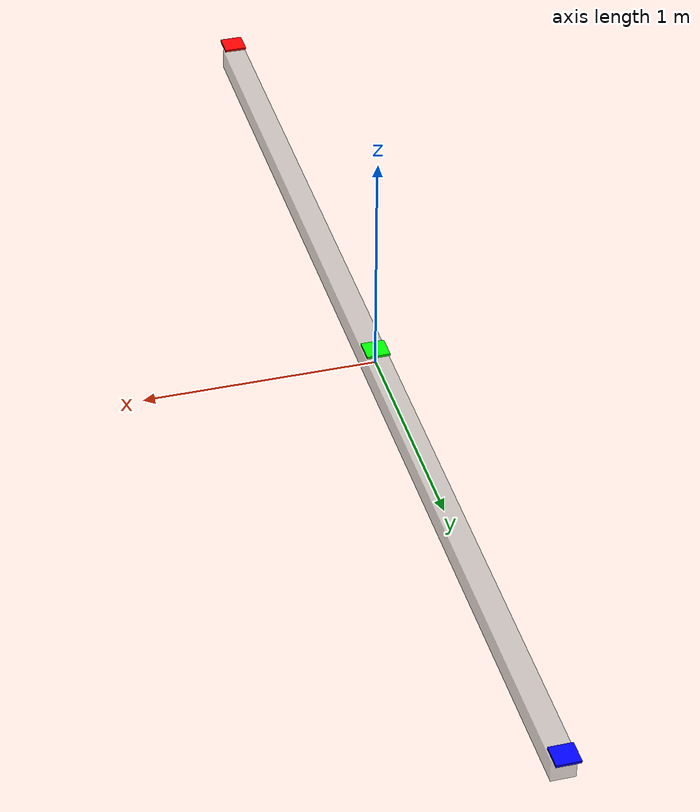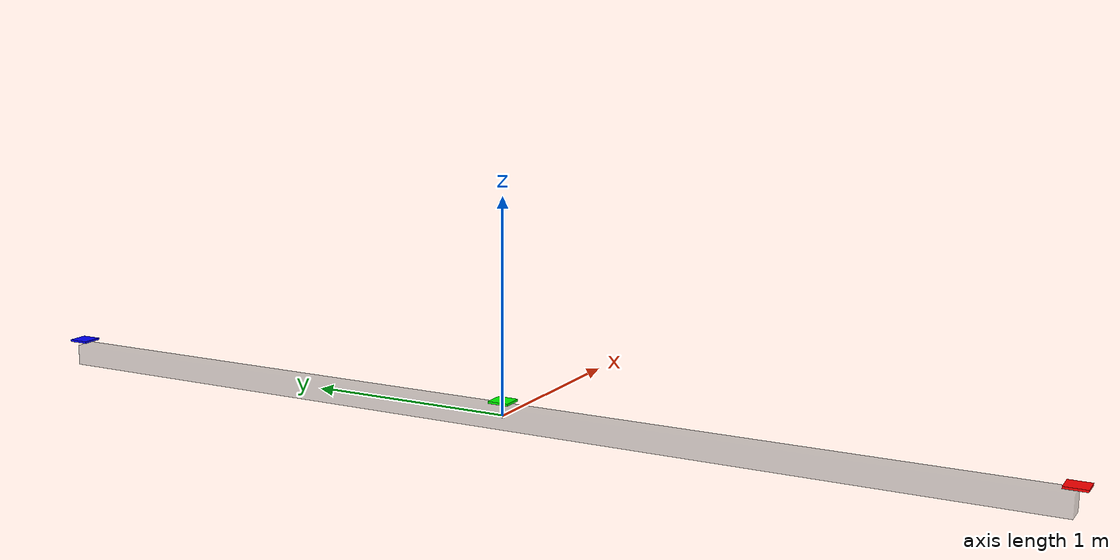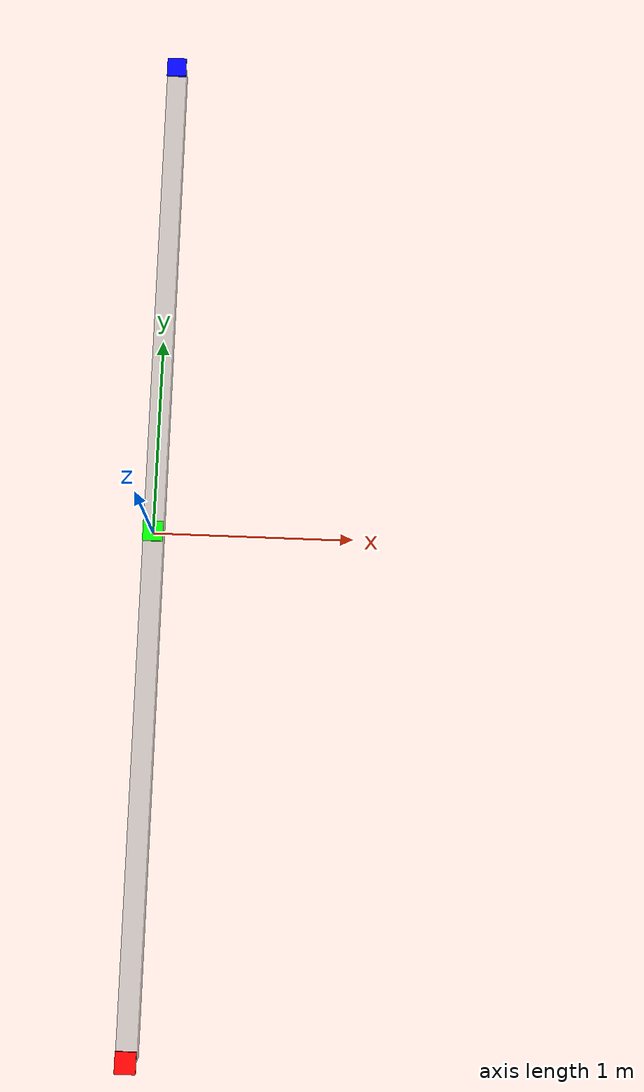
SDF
<?xml version='1.0'?>
<sdf version='1.6'>
  <model name='beam_5m_Com_2.5m_0.5kg'>
	<include>
      <uri>model://bare_beam</uri>
    </include>
    <link name='CoM'>
      <inertial>
        <mass>0.01</mass>
        <inertia>
          <ixx>0.00018</ixx>
          <ixy>0</ixy>
          <ixz>0</ixz>
          <iyy>0.00018</iyy>
          <iyz>0</iyz>
          <izz>0.00018</izz>
        </inertia>
        <pose frame=''>0 0 0 0 -0 0</pose>
      </inertial>
      <pose frame=''>0 0 0 0 -0 0</pose>
      <gravity>1</gravity>
      <self_collide>0</self_collide>
      <kinematic>0</kinematic>
      <enable_wind>0</enable_wind>
      <visual name='visual'>
        <pose frame=''>0 0 0 0 -0 0</pose>
        <geometry>
          <sphere>
            <radius>0.01</radius>
          </sphere>
        </geometry>
        <material>
          <lighting>1</lighting>
          <script>
            <uri>file://media/materials/scripts/gazebo.material</uri>
            <name>Gazebo/Grey</name>
          </script>
          <shader type='pixel'>
            <normal_map>__default__</normal_map>
          </shader>
          <ambient>0 0 0 0.1</ambient>
          <diffuse>0 0 0 0.1</diffuse>
          <specular>0 0 0 0.1</specular>
          <emissive>0 0 0 1</emissive>
        </material>
        <transparency>0</transparency>
        <cast_shadows>1</cast_shadows>
      </visual>
    </link>
    <link name='blue_attachment_point'>
      <inertial>
        <mass>0.001</mass>
        <inertia>
          <ixx>1e-05</ixx>
          <ixy>0</ixy>
          <ixz>0</ixz>
          <iyy>1e-05</iyy>
          <iyz>0</iyz>
          <izz>1e-05</izz>
        </inertia>
        <pose frame=''>0 0 0 0 -0 0</pose>
      </inertial>
      <pose frame=''>0 2.5 0.07 0 -0 0</pose>
      <gravity>1</gravity>
      <self_collide>0</self_collide>
      <kinematic>0</kinematic>
      <enable_wind>0</enable_wind>
      <visual name='visual'>
        <pose frame=''>0 0 0 0 -0 0</pose>
        <geometry>
          <box>
            <size>0.1 0.1 0.01</size>
          </box>
        </geometry>
        <material>
          <lighting>1</lighting>
          <script>
            <uri>file://media/materials/scripts/gazebo.material</uri>
            <name>Gazebo/Grey</name>
          </script>
          <shader type='pixel'>
            <normal_map>__default__</normal_map>
          </shader>
          <ambient>0 0 1 1</ambient>
          <diffuse>0 0 1 1</diffuse>
          <specular>0 0 1 1</specular>
          <emissive>0 0 0 1</emissive>
        </material>
        <transparency>0</transparency>
        <cast_shadows>1</cast_shadows>
      </visual>
    </link>
    <link name='green_attachment_point'>
      <inertial>
        <mass>0.001</mass>
        <inertia>
          <ixx>1e-05</ixx>
          <ixy>0</ixy>
          <ixz>0</ixz>
          <iyy>1e-05</iyy>
          <iyz>0</iyz>
          <izz>1e-05</izz>
        </inertia>
        <pose frame=''>0 0 0 0 -0 0</pose>
      </inertial>
      <pose frame=''>0 0 0.07 0 -0 0</pose>
      <gravity>1</gravity>
      <self_collide>0</self_collide>
      <kinematic>0</kinematic>
      <enable_wind>0</enable_wind>
      <visual name='visual'>
        <pose frame=''>0 0 0 0 -0 0</pose>
        <geometry>
          <box>
            <size>0.1 0.1 0.01</size>
          </box>
        </geometry>
        <material>
          <lighting>1</lighting>
          <script>
            <uri>file://media/materials/scripts/gazebo.material</uri>
            <name>Gazebo/Grey</name>
          </script>
          <shader type='pixel'>
            <normal_map>__default__</normal_map>
          </shader>
          <ambient>0 1 0 1</ambient>
          <diffuse>0 1 0 1</diffuse>
          <specular>0 1 0 1</specular>
          <emissive>0 0 0 1</emissive>
        </material>
        <transparency>0</transparency>
        <cast_shadows>1</cast_shadows>
      </visual>
    </link>
    <link name='red_attachment_point'>
      <inertial>
        <mass>0.001</mass>
        <inertia>
          <ixx>1e-05</ixx>
          <ixy>0</ixy>
          <ixz>0</ixz>
          <iyy>1e-05</iyy>
          <iyz>0</iyz>
          <izz>1e-05</izz>
        </inertia>
        <pose frame=''>0 0 0 0 -0 0</pose>
      </inertial>
      <pose frame=''>0 -2.5 0.07 0 -0 0</pose>
      <gravity>1</gravity>
      <self_collide>0</self_collide>
      <kinematic>0</kinematic>
      <enable_wind>0</enable_wind>
      <visual name='visual'>
        <pose frame=''>0 0 0 0 -0 0</pose>
        <geometry>
          <box>
            <size>0.1 0.1 0.01</size>
          </box>
        </geometry>
        <material>
          <lighting>1</lighting>
          <script>
            <uri>file://media/materials/scripts/gazebo.material</uri>
            <name>Gazebo/Grey</name>
          </script>
          <shader type='pixel'>
            <normal_map>__default__</normal_map>
          </shader>
          <ambient>1 0 0 1</ambient>
          <diffuse>1 0 0 1</diffuse>
          <specular>1 0 0 1</specular>
          <emissive>0 0 0 1</emissive>
        </material>
        <transparency>0</transparency>
        <cast_shadows>1</cast_shadows>
      </visual>
    </link>
    <joint name='beam_CoM_Fixed' type='fixed'>
      <parent>bare_beam::beam</parent>
      <child>CoM</child>
      <pose frame=''>0 0 0 0 -0 0</pose>
      <physics>
        <ode>
          <limit>
            <cfm>0</cfm>
            <erp>0</erp>
          </limit>
          <suspension>
            <cfm>0</cfm>
            <erp>0</erp>
          </suspension>
        </ode>
      </physics>
    </joint>
    <joint name='beam_JOINT_3' type='fixed'>
      <parent>bare_beam::beam</parent>
      <child>green_attachment_point</child>
      <pose frame=''>0 0 0 0 -0 0</pose>
      <physics>
        <ode>
          <limit>
            <cfm>0</cfm>
            <erp>0</erp>
          </limit>
          <suspension>
            <cfm>0</cfm>
            <erp>0</erp>
          </suspension>
        </ode>
      </physics>
    </joint>
    <joint name='beam_JOINT_4' type='fixed'>
      <parent>bare_beam::beam</parent>
      <child>red_attachment_point</child>
      <pose frame=''>0 0 0 0 -0 0</pose>
    </joint>
    <joint name='beam_JOINT_5' type='fixed'>
      <parent>bare_beam::beam</parent>
      <child>blue_attachment_point</child>
      <pose frame=''>0 0 0 0 -0 0</pose>
      <physics>
        <ode>
          <limit>
            <cfm>0</cfm>
            <erp>0</erp>
          </limit>
          <suspension>
            <cfm>0</cfm>
            <erp>0</erp>
          </suspension>
        </ode>
      </physics>
    </joint>
    <static>0</static>
    <allow_auto_disable>1</allow_auto_disable>
  </model>
</sdf>

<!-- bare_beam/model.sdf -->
<sdf version='1.6'>
  <model name='bare_beam'>
    <link name='beam'>
      <inertial>
        <mass>0.1</mass>
        <inertia>
          <ixx>0.208417</ixx>
          <ixy>0</ixy>
          <ixz>0</ixz>
          <iyy>0.00016667</iyy>
          <iyz>0</iyz>
          <izz>0.208417</izz>
        </inertia>
        <pose frame=''>0 0 0 0 -0 0</pose>
      </inertial>
      <self_collide>0</self_collide>
      <enable_wind>0</enable_wind>
      <kinematic>0</kinematic>
      <pose frame=''>0 0 0 0 -0 0</pose>
      <gravity>1</gravity>
      <visual name='visual'>
        <geometry>
          <box>
            <size>0.1 5 0.1</size>
          </box>
        </geometry>
        <material>
          <script>
            <name>Gazebo/Grey</name>
            <uri>file://media/materials/scripts/gazebo.material</uri>
          </script>
          <shader type='pixel'>
            <normal_map>__default__</normal_map>
          </shader>
        </material>
        <pose frame=''>0 0 0 0 -0 0</pose>
        <transparency>0.5</transparency>
        <cast_shadows>1</cast_shadows>
      </visual>
      <collision name='collision'>
        <laser_retro>0</laser_retro>
        <max_contacts>10</max_contacts>
        <pose frame=''>0 0 0 0 -0 0</pose>
        <geometry>
          <box>
            <size>0.1 5 0.1</size>
          </box>
        </geometry>
        <surface>
          <friction>
            <ode>
              <mu>1</mu>
              <mu2>1</mu2>
              <fdir1>0 0 0</fdir1>
              <slip1>0</slip1>
              <slip2>0</slip2>
            </ode>
            <torsional>
              <coefficient>1</coefficient>
              <patch_radius>0</patch_radius>
              <surface_radius>0</surface_radius>
              <use_patch_radius>1</use_patch_radius>
              <ode>
                <slip>0</slip>
              </ode>
            </torsional>
          </friction>
        </surface>
      </collision>
    </link>
    <static>0</static>
    <allow_auto_disable>1</allow_auto_disable>

	<plugin name="DSCC_2020_init_plugin" filename="libDSCC_2020_init_plugin.so"/>
  </model>
</sdf>
